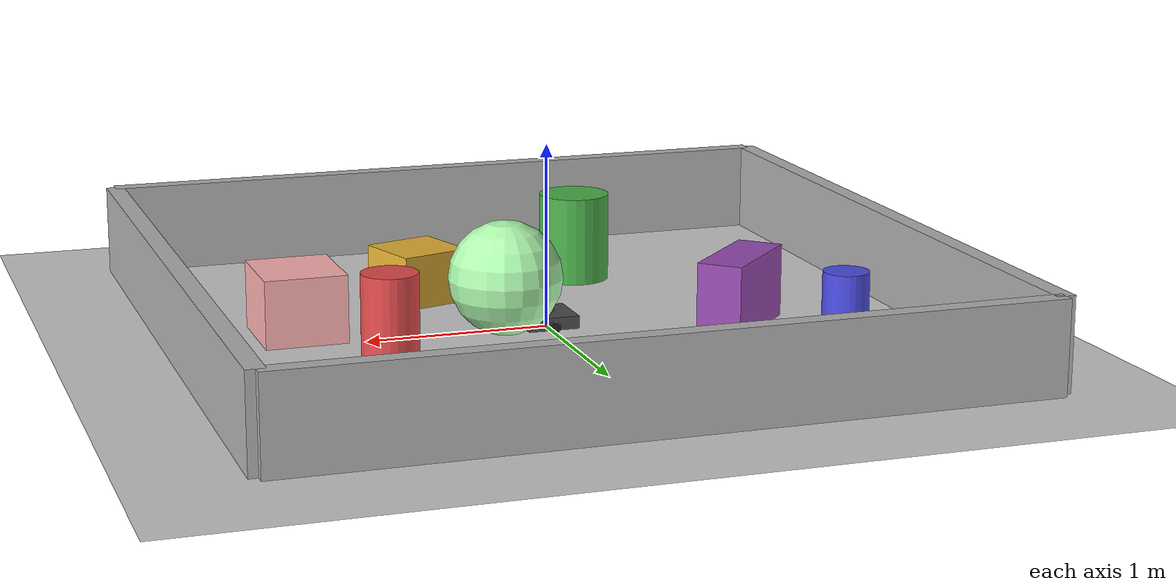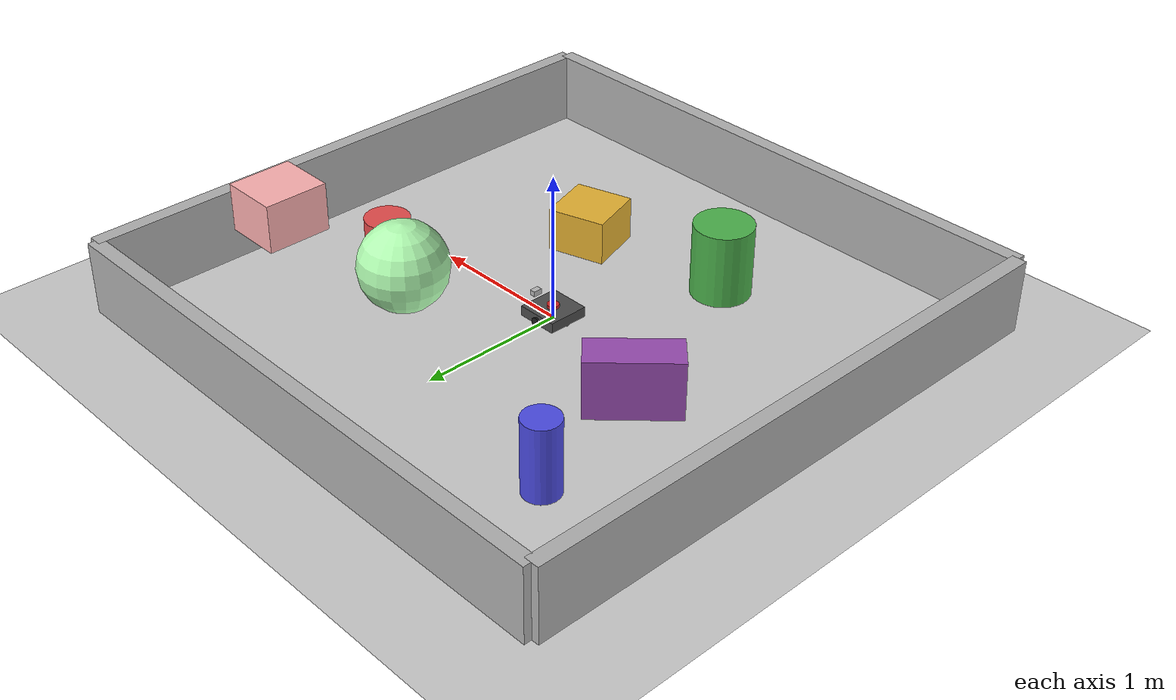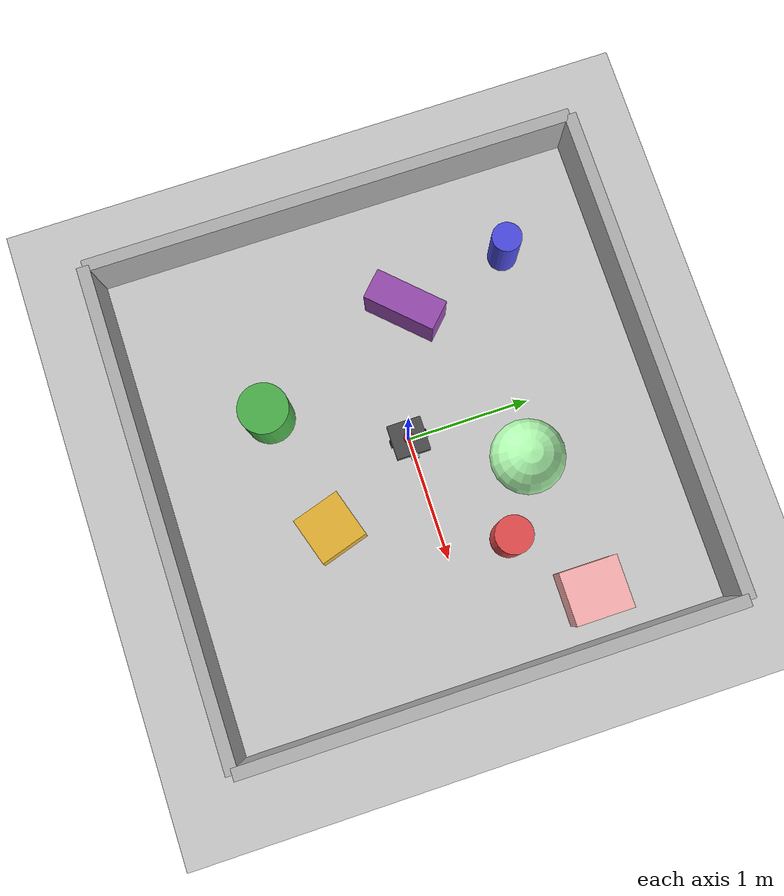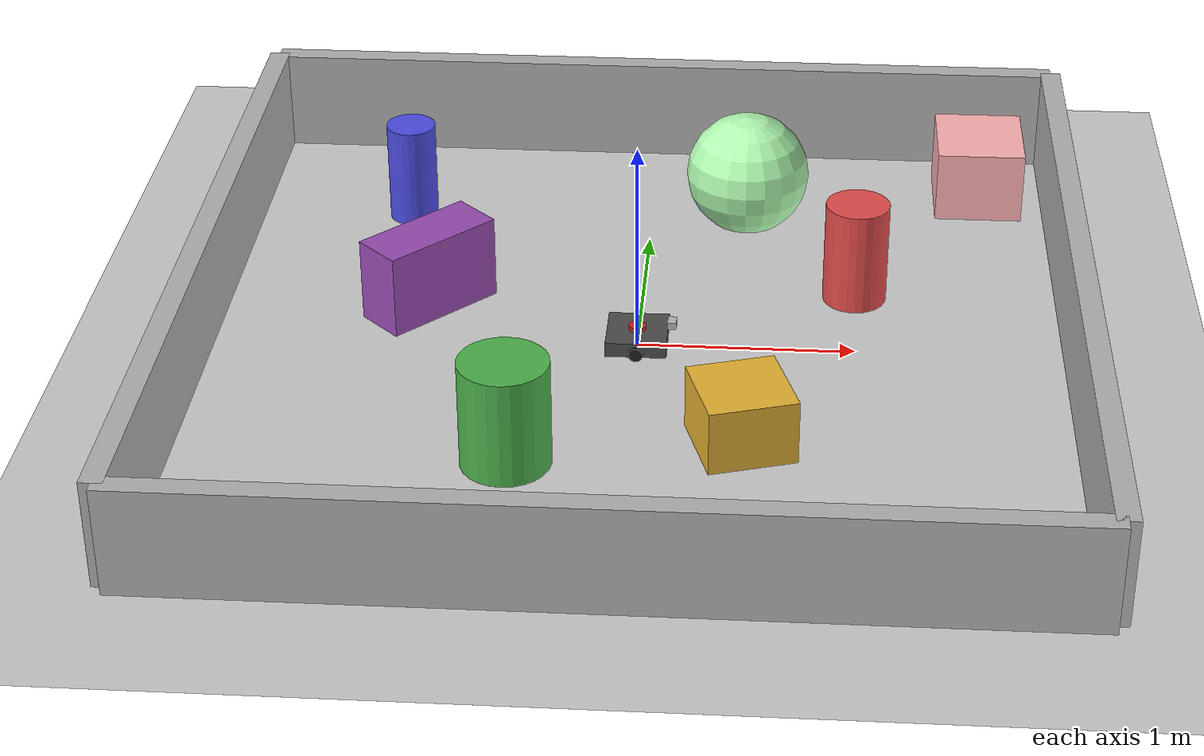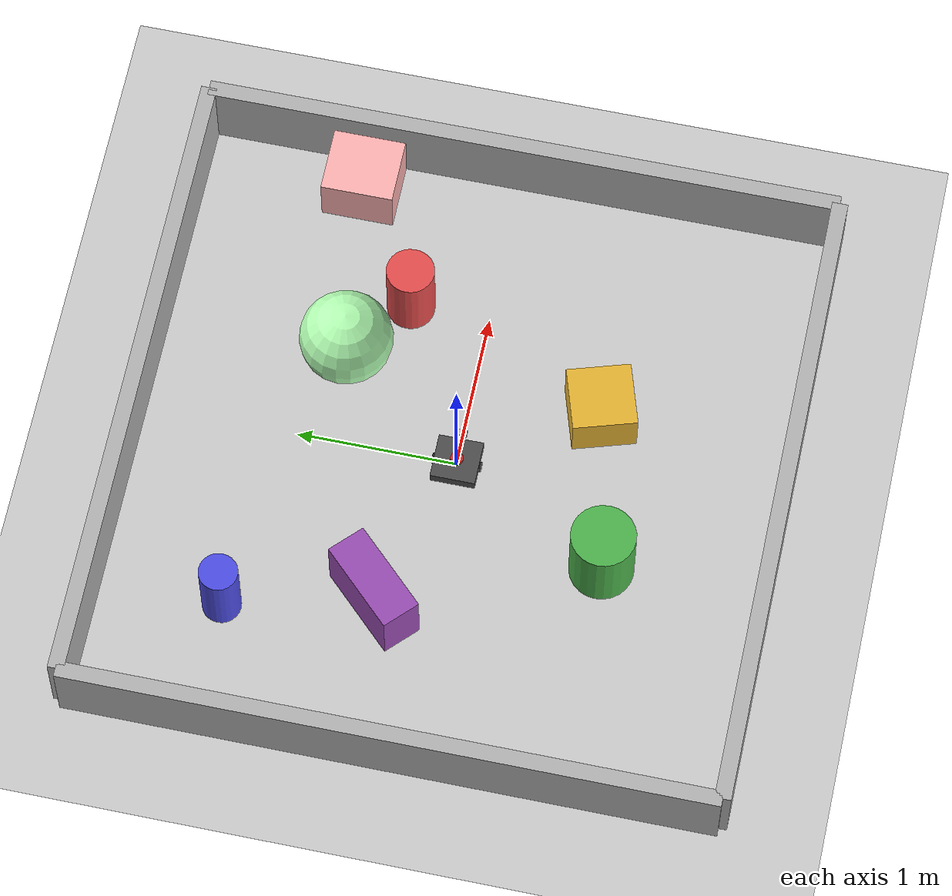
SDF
<sdf version="1.7">
 <world name="obstacles_world">
  <physics type="ode">
   <real_time_update_rate>1000</real_time_update_rate>
   <max_step_size>0.001</max_step_size>
   <real_time_factor>1</real_time_factor>
  </physics>
  <light name="sun" type="directional">
   <pose>0 0 10 0 -0 0</pose>
   <diffuse>0.8 0.8 0.8 1</diffuse>
   <specular>0.2 0.2 0.2 1</specular>
   <direction>-0.5 0.1 -0.9</direction>
   <attenuation><range>10</range></attenuation>
   <spot><inner_angle>0</inner_angle><outer_angle>0</outer_angle><falloff>0</falloff></spot>
  </light>
  <light name="point_light" type="point">
   <pose>0 0 5 0 -0 0</pose>
   <diffuse>0.5 0.5 0.5 1</diffuse>
   <specular>0.1 0.1 0.1 1</specular>
   <attenuation>
    <range>20</range>
    <constant>0.5</constant>
    <linear>0.01</linear>
    <quadratic>0.001</quadratic>
   </attenuation>
   <direction>0 0 -1</direction>
   <spot><inner_angle>0</inner_angle><outer_angle>0</outer_angle><falloff>0</falloff></spot>
  </light>
  <model name="ground_plane">
   <static>1</static>
   <link name="link">
    <collision name="collision">
     <geometry><plane><normal>0 0 1</normal><size>100 100</size></plane></geometry>
     <surface><friction><ode><mu>100</mu><mu2>50</mu2></ode></friction></surface>
    </collision>
    <visual name="visual">
     <cast_shadows>0</cast_shadows>
     <geometry><plane><normal>0 0 1</normal><size>100 100</size></plane></geometry>
     <material>
      <script><uri>file://media/materials/scripts/gazebo.material</uri><name>Gazebo/Grey</name></script>
     </material>
    </visual>
   </link>
  </model>
  <model name="wall_north">
   <static>1</static>
   <pose>0 2 0.25 0 -0 0</pose>
   <link name="link">
    <collision name="collision"><geometry><box><size>4 0.1 0.5</size></box></geometry></collision>
    <visual name="visual">
     <geometry><box><size>4 0.1 0.5</size></box></geometry>
     <material><ambient>0.6 0.6 0.6 1</ambient><diffuse>0.7 0.7 0.7 1</diffuse></material>
    </visual>
   </link>
  </model>
  <model name="wall_south">
   <static>1</static>
   <pose>0 -2 0.25 0 -0 0</pose>
   <link name="link">
    <collision name="collision"><geometry><box><size>4 0.1 0.5</size></box></geometry></collision>
    <visual name="visual">
     <geometry><box><size>4 0.1 0.5</size></box></geometry>
     <material><ambient>0.6 0.6 0.6 1</ambient><diffuse>0.7 0.7 0.7 1</diffuse></material>
    </visual>
   </link>
  </model>
  <model name="wall_east">
   <static>1</static>
   <pose>2 0 0.25 0 -0 1.5708</pose>
   <link name="link">
    <collision name="collision"><geometry><box><size>4 0.1 0.5</size></box></geometry></collision>
    <visual name="visual">
     <geometry><box><size>4 0.1 0.5</size></box></geometry>
     <material><ambient>0.6 0.6 0.6 1</ambient><diffuse>0.7 0.7 0.7 1</diffuse></material>
    </visual>
   </link>
  </model>
  <model name="wall_west">
   <static>1</static>
   <pose>-2 0 0.25 0 -0 1.5708</pose>
   <link name="link">
    <collision name="collision"><geometry><box><size>4 0.1 0.5</size></box></geometry></collision>
    <visual name="visual">
     <geometry><box><size>4 0.1 0.5</size></box></geometry>
     <material><ambient>0.6 0.6 0.6 1</ambient><diffuse>0.7 0.7 0.7 1</diffuse></material>
    </visual>
   </link>
  </model>
  <model name="cylinder_obstacle_1">
   <static>1</static>
   <pose>1 0.5 0.25 0 -0 0</pose>
   <link name="link">
    <collision name="collision">
     <geometry><cylinder><radius>0.15</radius><length>0.5</length></cylinder></geometry>
    </collision>
    <visual name="visual">
     <geometry><cylinder><radius>0.15</radius><length>0.5</length></cylinder></geometry>
     <material><ambient>0.8 0.2 0.2 1</ambient><diffuse>0.9 0.3 0.3 1</diffuse></material>
    </visual>
   </link>
  </model>
  <model name="cylinder_obstacle_2">
   <static>1</static>
   <pose>-0.5 -1 0.25 0 -0 0</pose>
   <link name="link">
    <collision name="collision">
     <geometry><cylinder><radius>0.2</radius><length>0.5</length></cylinder></geometry>
    </collision>
    <visual name="visual">
     <geometry><cylinder><radius>0.2</radius><length>0.5</length></cylinder></geometry>
     <material><ambient>0.2 0.6 0.2 1</ambient><diffuse>0.3 0.7 0.3 1</diffuse></material>
    </visual>
   </link>
  </model>
  <model name="cylinder_obstacle_3">
   <static>1</static>
   <pose>-1.2 1.2 0.25 0 -0 0</pose>
   <link name="link">
    <collision name="collision">
     <geometry><cylinder><radius>0.12</radius><length>0.5</length></cylinder></geometry>
    </collision>
    <visual name="visual">
     <geometry><cylinder><radius>0.12</radius><length>0.5</length></cylinder></geometry>
     <material><ambient>0.2 0.2 0.8 1</ambient><diffuse>0.3 0.3 0.9 1</diffuse></material>
    </visual>
   </link>
  </model>
  <model name="box_obstacle_1">
   <static>1</static>
   <pose>0.5 -0.8 0.15 0 -0 0.3</pose>
   <link name="link">
    <collision name="collision"><geometry><box><size>0.4 0.4 0.3</size></box></geometry></collision>
    <visual name="visual">
     <geometry><box><size>0.4 0.4 0.3</size></box></geometry>
     <material><ambient>0.8 0.6 0.1 1</ambient><diffuse>0.9 0.7 0.2 1</diffuse></material>
    </visual>
   </link>
  </model>
  <model name="box_obstacle_2">
   <static>1</static>
   <pose>-1 0.3 0.2 0 -0 0.8</pose>
   <link name="link">
    <collision name="collision"><geometry><box><size>0.6 0.25 0.4</size></box></geometry></collision>
    <visual name="visual">
     <geometry><box><size>0.6 0.25 0.4</size></box></geometry>
     <material><ambient>0.5 0.2 0.6 1</ambient><diffuse>0.6 0.3 0.7 1</diffuse></material>
    </visual>
   </link>
  </model>
  <gravity>0 0 -9.8</gravity>
  <magnetic_field>6e-06 2.3e-05 -4.2e-05</magnetic_field>
  <atmosphere type="adiabatic"/>
  <scene><ambient>0.4 0.4 0.4 1</ambient><background>0.7 0.7 0.7 1</background><shadows>1</shadows></scene>
  <audio><device>default</device></audio>
  <spherical_coordinates>
   <surface_model>EARTH_WGS84</surface_model>
   <latitude_deg>0</latitude_deg>
   <longitude_deg>0</longitude_deg>
   <elevation>0</elevation>
   <heading_deg>0</heading_deg>
  </spherical_coordinates>
  <model name="recruit_robot">
   <link name="base_footprint">
    <inertial>
     <pose>-0.001283 0 0.052301 0 -0 0</pose>
     <mass>1.13</mass>
     <inertia>
      <ixx>0.00727841</ixx>
      <ixy>0</ixy>
      <ixz>-0.000558086</ixz>
      <iyy>0.0149567</iyy>
      <iyz>0</iyz>
      <izz>0.00854562</izz>
     </inertia>
    </inertial>
    <collision name="base_footprint_fixed_joint_lump__base_link_collision">
     <pose>0 0 0.05 0 -0 0</pose>
     <geometry><box><size>0.28 0.28 0.07</size></box></geometry>
    </collision>
    <collision name="base_footprint_fixed_joint_lump__camera_link_collision_1">
     <pose>0.16 0 0.12 0 -0 0</pose>
     <geometry><box><size>0.04 0.06 0.035</size></box></geometry>
    </collision>
    <collision name="base_footprint_fixed_joint_lump__caster_wheel_collision_2">
     <pose>-0.125 0 0.015 0 -0 0</pose>
     <geometry><sphere><radius>0.015</radius></sphere></geometry>
     <surface>
      <contact><ode><kp>500000</kp><kd>10</kd></ode></contact>
      <friction><ode><mu>0</mu><mu2>0</mu2></ode></friction>
     </surface>
    </collision>
    <collision name="base_footprint_fixed_joint_lump__lidar_link_collision_3">
     <pose>0 0 0.095 0 -0 0</pose>
     <geometry><cylinder><length>0.02</length><radius>0.04</radius></cylinder></geometry>
    </collision>
    <visual name="base_footprint_fixed_joint_lump__base_link_visual">
     <pose>0 0 0.05 0 -0 0</pose>
     <geometry><box><size>0.28 0.28 0.07</size></box></geometry>
     <material>
      <script><name>Gazebo/DarkGrey</name><uri>file://media/materials/scripts/gazebo.material</uri></script>
     </material>
    </visual>
    <visual name="base_footprint_fixed_joint_lump__camera_link_visual_1">
     <pose>0.16 0 0.12 0 -0 0</pose>
     <geometry><box><size>0.04 0.06 0.035</size></box></geometry>
    </visual>
    <visual name="base_footprint_fixed_joint_lump__caster_wheel_visual_2">
     <pose>-0.125 0 0.015 0 -0 0</pose>
     <geometry><sphere><radius>0.015</radius></sphere></geometry>
     <material>
      <script><name>Gazebo/Grey</name><uri>file://media/materials/scripts/gazebo.material</uri></script>
     </material>
    </visual>
    <visual name="base_footprint_fixed_joint_lump__lidar_link_visual_3">
     <pose>0 0 0.095 0 -0 0</pose>
     <geometry><cylinder><length>0.02</length><radius>0.04</radius></cylinder></geometry>
     <material>
      <script><name>Gazebo/Red</name><uri>file://media/materials/scripts/gazebo.material</uri></script>
     </material>
    </visual>
    <sensor name="rgb_camera" type="camera">
     <always_on>1</always_on>
     <visualize>1</visualize>
     <update_rate>30</update_rate>
     <camera>
      <horizontal_fov>1.047</horizontal_fov>
      <image><width>640</width><height>480</height><format>R8G8B8</format></image>
      <clip><near>0.05</near><far>20</far></clip>
     </camera>
     <plugin name="gazebo_ros_camera" filename="libgazebo_ros_camera.so">
      <ros>
       <remapping>image_raw:=/camera/image_raw</remapping>
       <remapping>camera_info:=/camera/camera_info</remapping>
      </ros>
      <camera_name>camera</camera_name>
      <frame_name>camera_optical_frame</frame_name>
     </plugin>
     <pose>0.16 0 0.12 0 -0 0</pose>
    </sensor>
    <sensor name="lidar_sensor" type="ray">
     <visualize>1</visualize>
     <update_rate>10</update_rate>
     <ray>
      <scan>
       <horizontal>
        <samples>360</samples>
        <resolution>1</resolution>
        <min_angle>-3.14159</min_angle>
        <max_angle>3.14159</max_angle>
       </horizontal>
       <vertical><samples>1</samples><min_angle>0</min_angle><max_angle>0</max_angle></vertical>
      </scan>
      <range><min>0.12</min><max>3.5</max><resolution>0.01</resolution></range>
      <noise><type>gaussian</type><mean>0</mean><stddev>0.01</stddev></noise>
     </ray>
     <plugin name="gazebo_ros_lidar" filename="libgazebo_ros_ray_sensor.so">
      <ros><remapping>~/out:=scan</remapping></ros>
      <output_type>sensor_msgs/LaserScan</output_type>
      <frame_name>lidar_link</frame_name>
     </plugin>
     <pose>0 0 0.095 0 -0 0</pose>
    </sensor>
   </link>
   <joint name="left_wheel_joint" type="revolute">
    <pose relative_to="base_footprint">0 0.14 0.033 -1.5708 0 0</pose>
    <parent>base_footprint</parent>
    <child>left_wheel</child>
    <axis>
     <xyz>0 0 1</xyz>
     <limit><lower>-1e+16</lower><upper>1e+16</upper></limit>
     <dynamics>
      <damping>0.2</damping>
      <friction>0</friction>
      <spring_reference>0</spring_reference>
      <spring_stiffness>0</spring_stiffness>
     </dynamics>
    </axis>
   </joint>
   <link name="left_wheel">
    <pose relative_to="left_wheel_joint">0 0 0 0 -0 0</pose>
    <inertial>
     <mass>0.1</mass>
     <inertia>
      <ixx>3.28583e-05</ixx>
      <ixy>0</ixy>
      <ixz>0</ixz>
      <iyy>3.28583e-05</iyy>
      <iyz>0</iyz>
      <izz>5.445e-05</izz>
     </inertia>
    </inertial>
    <collision name="left_wheel_collision">
     <geometry><cylinder><length>0.026</length><radius>0.033</radius></cylinder></geometry>
     <surface>
      <contact><ode><kp>500000</kp><kd>10</kd></ode></contact>
      <friction><ode><mu>1</mu><mu2>1</mu2></ode></friction>
     </surface>
    </collision>
    <visual name="left_wheel_visual">
     <geometry><cylinder><length>0.026</length><radius>0.033</radius></cylinder></geometry>
     <material>
      <script><name>Gazebo/Black</name><uri>file://media/materials/scripts/gazebo.material</uri></script>
     </material>
    </visual>
   </link>
   <joint name="right_wheel_joint" type="revolute">
    <pose relative_to="base_footprint">0 -0.14 0.033 -1.5708 0 0</pose>
    <parent>base_footprint</parent>
    <child>right_wheel</child>
    <axis>
     <xyz>0 0 1</xyz>
     <limit><lower>-1e+16</lower><upper>1e+16</upper></limit>
     <dynamics>
      <damping>0.2</damping>
      <friction>0</friction>
      <spring_reference>0</spring_reference>
      <spring_stiffness>0</spring_stiffness>
     </dynamics>
    </axis>
   </joint>
   <link name="right_wheel">
    <pose relative_to="right_wheel_joint">0 0 0 0 -0 0</pose>
    <inertial>
     <mass>0.1</mass>
     <inertia>
      <ixx>3.28583e-05</ixx>
      <ixy>0</ixy>
      <ixz>0</ixz>
      <iyy>3.28583e-05</iyy>
      <iyz>0</iyz>
      <izz>5.445e-05</izz>
     </inertia>
    </inertial>
    <collision name="right_wheel_collision">
     <geometry><cylinder><length>0.026</length><radius>0.033</radius></cylinder></geometry>
     <surface>
      <contact><ode><kp>500000</kp><kd>10</kd></ode></contact>
      <friction><ode><mu>1</mu><mu2>1</mu2></ode></friction>
     </surface>
    </collision>
    <visual name="right_wheel_visual">
     <geometry><cylinder><length>0.026</length><radius>0.033</radius></cylinder></geometry>
     <material>
      <script><name>Gazebo/Black</name><uri>file://media/materials/scripts/gazebo.material</uri></script>
     </material>
    </visual>
   </link>
   <static>0</static>
   <plugin name="gazebo_ros_diff_drive" filename="libgazebo_ros_diff_drive.so">
    <left_joint>left_wheel_joint</left_joint>
    <right_joint>right_wheel_joint</right_joint>
    <wheel_separation>0.28</wheel_separation>
    <wheel_diameter>0.066</wheel_diameter>
    <max_wheel_torque>20</max_wheel_torque>
    <max_wheel_acceleration>1.0</max_wheel_acceleration>
    <publish_odom>1</publish_odom>
    <publish_odom_tf>1</publish_odom_tf>
    <publish_wheel_tf>0</publish_wheel_tf>
    <odometry_frame>odom</odometry_frame>
    <robot_base_frame>base_footprint</robot_base_frame>
    <odometry_source>1</odometry_source>
    <command_topic>cmd_vel</command_topic>
    <odometry_topic>odom</odometry_topic>
   </plugin>
   <plugin name="gazebo_ros_joint_state_publisher" filename="libgazebo_ros_joint_state_publisher.so">
    <ros><remapping>~/out:=joint_states</remapping></ros>
    <update_rate>30</update_rate>
    <joint_name>left_wheel_joint</joint_name>
    <joint_name>right_wheel_joint</joint_name>
   </plugin>
   <pose>0.000392 -0 -6e-06 -0 4.9e-05 0.000104</pose>
  </model>
  <model name="Model">
   <link name="link_0">
    <inertial>
     <mass>0.194242</mass>
     <inertia>
      <ixx>0.00651491</ixx>
      <ixy>0</ixy>
      <ixz>0</ixz>
      <iyy>0.00651491</iyy>
      <iyz>0</iyz>
      <izz>0.00651491</izz>
     </inertia>
    </inertial>
    <pose>-0.547819 -0.065403 0 0 -0 0</pose>
    <visual name="visual">
     <geometry><sphere><radius>0.28957</radius></sphere></geometry>
     <material>
      <lighting>1</lighting>
      <script><uri>file://media/materials/scripts/gazebo.material</uri><name>Gazebo/Grey</name></script>
      <shader type="pixel"><normal_map>__default__</normal_map></shader>
      <ambient>0.3 1 0.3 1</ambient>
      <diffuse>0.7 1 0.7 1</diffuse>
      <specular>0.01 0.01 0.01 1</specular>
      <emissive>0 0 0 1</emissive>
     </material>
    </visual>
    <collision name="collision">
     <geometry><sphere><radius>0.28957</radius></sphere></geometry>
     <surface>
      <friction>
       <ode><mu>1</mu><mu2>1</mu2><fdir1>0 0 0</fdir1><slip1>0</slip1><slip2>0</slip2></ode>
       <torsional>
        <coefficient>1</coefficient>
        <patch_radius>0</patch_radius>
        <surface_radius>0</surface_radius>
        <use_patch_radius>1</use_patch_radius>
        <ode><slip>0</slip></ode>
       </torsional>
      </friction>
      <bounce><restitution_coefficient>0</restitution_coefficient><threshold>1e+06</threshold></bounce>
      <contact>
       <collide_without_contact>0</collide_without_contact>
       <collide_without_contact_bitmask>1</collide_without_contact_bitmask>
       <collide_bitmask>1</collide_bitmask>
       <ode>
        <soft_cfm>0</soft_cfm>
        <soft_erp>0.2</soft_erp>
        <kp>1e+13</kp>
        <kd>1</kd>
        <max_vel>0.01</max_vel>
        <min_depth>0</min_depth>
       </ode>
       <bullet>
        <split_impulse>1</split_impulse>
        <split_impulse_penetration_threshold>-0.01</split_impulse_penetration_threshold>
        <soft_cfm>0</soft_cfm>
        <soft_erp>0.2</soft_erp>
        <kp>1e+13</kp>
        <kd>1</kd>
       </bullet>
      </contact>
     </surface>
    </collision>
   </link>
   <link name="link_1">
    <inertial>
     <mass>0.0606034</mass>
     <inertia>
      <ixx>0.00158104</ixx>
      <ixy>0</ixy>
      <ixz>0</ixz>
      <iyy>0.0013886</iyy>
      <iyz>0</iyz>
      <izz>0.001843</izz>
     </inertia>
    </inertial>
    <pose>0.547819 0.065403 0 0 -0 0</pose>
    <visual name="visual">
     <geometry><box><size>0.404244 0.448907 0.33398</size></box></geometry>
     <material>
      <lighting>1</lighting>
      <script><uri>file://media/materials/scripts/gazebo.material</uri><name>Gazebo/Grey</name></script>
      <shader type="pixel"><normal_map>__default__</normal_map></shader>
      <ambient>1 0 0 0</ambient>
      <diffuse>1 0.7 0.7 1</diffuse>
      <specular>1 0.01 0.01 1</specular>
      <emissive>0 0 0 1</emissive>
     </material>
    </visual>
    <visual name="ModelPreview_1::link_1::visual_1">
     <geometry><box><size>0.404244 0.448907 0.33398</size></box></geometry>
     <material>
      <lighting>1</lighting>
      <script><uri>file://media/materials/scripts/gazebo.material</uri><name>Gazebo/Grey</name></script>
      <shader type="pixel"><normal_map>__default__</normal_map></shader>
      <ambient>1 0 0 0</ambient>
      <diffuse>1 0.7 0.7 1</diffuse>
      <specular>0.7 0.01 0.01 1</specular>
      <emissive>0 0 0 1</emissive>
     </material>
    </visual>
    <visual name="ModelPreview_1::link_1::visual_2">
     <geometry><box><size>0.404244 0.448907 0.33398</size></box></geometry>
     <material>
      <lighting>1</lighting>
      <script><uri>file://media/materials/scripts/gazebo.material</uri><name>Gazebo/Grey</name></script>
      <shader type="pixel"><normal_map>__default__</normal_map></shader>
      <ambient>1 0 0 0</ambient>
      <diffuse>1 0.7 0.7 1</diffuse>
      <specular>0.7 0.01 0.01 1</specular>
      <emissive>0 0 0 1</emissive>
     </material>
    </visual>
    <collision name="collision">
     <geometry><box><size>0.404244 0.448907 0.33398</size></box></geometry>
     <surface>
      <friction>
       <ode><mu>1</mu><mu2>1</mu2><fdir1>0 0 0</fdir1><slip1>0</slip1><slip2>0</slip2></ode>
       <torsional>
        <coefficient>1</coefficient>
        <patch_radius>0</patch_radius>
        <surface_radius>0</surface_radius>
        <use_patch_radius>1</use_patch_radius>
        <ode><slip>0</slip></ode>
       </torsional>
      </friction>
      <bounce><restitution_coefficient>0</restitution_coefficient><threshold>1e+06</threshold></bounce>
      <contact>
       <collide_without_contact>0</collide_without_contact>
       <collide_without_contact_bitmask>1</collide_without_contact_bitmask>
       <collide_bitmask>1</collide_bitmask>
       <ode>
        <soft_cfm>0</soft_cfm>
        <soft_erp>0.2</soft_erp>
        <kp>1e+13</kp>
        <kd>1</kd>
        <max_vel>0.01</max_vel>
        <min_depth>0</min_depth>
       </ode>
       <bullet>
        <split_impulse>1</split_impulse>
        <split_impulse_penetration_threshold>-0.01</split_impulse_penetration_threshold>
        <soft_cfm>0</soft_cfm>
        <soft_erp>0.2</soft_erp>
        <kp>1e+13</kp>
        <kd>1</kd>
       </bullet>
      </contact>
     </surface>
    </collision>
   </link>
   <static>0</static>
   <pose>1.02463 0.853059 0.5 0 -0 0</pose>
  </model>
 </world>
</sdf>
